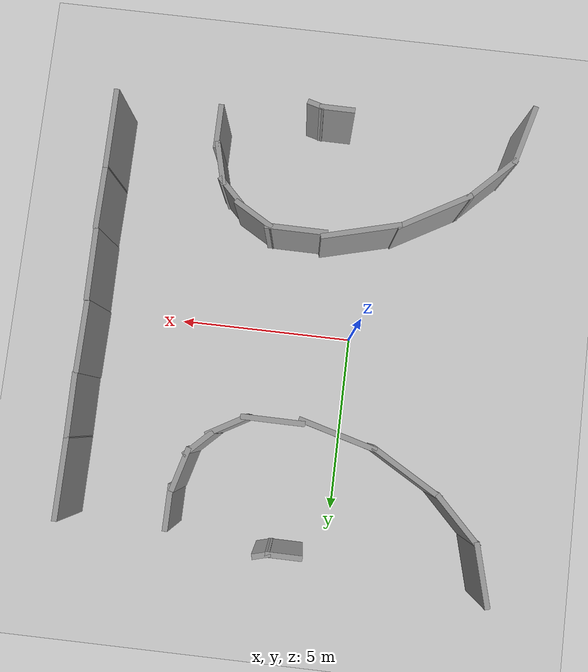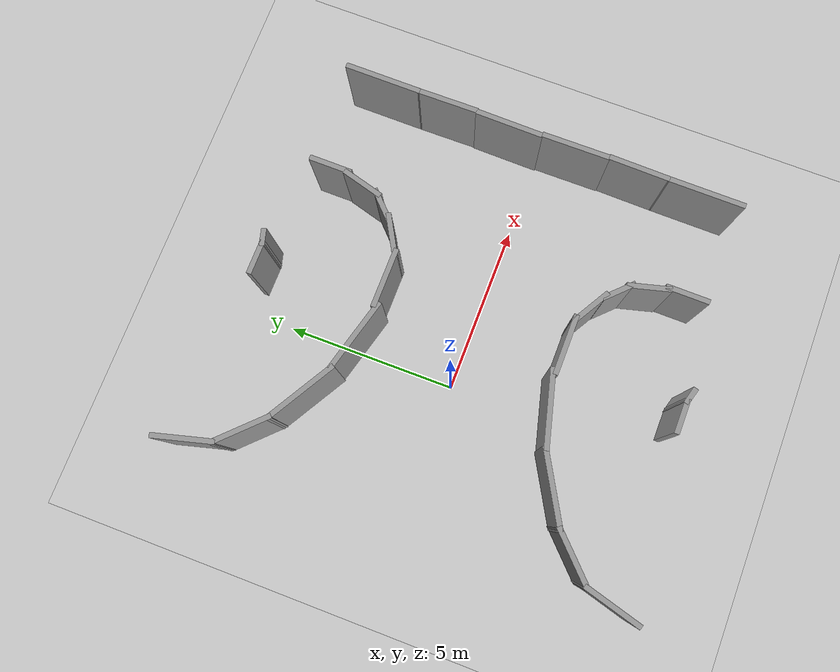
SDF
<sdf version="1.6">
 <world name="default">
  <model name="ground_plane">
   <static>1</static>
   <link name="link">
    <collision name="collision">
     <geometry><plane><normal>0 0 1</normal><size>100 100</size></plane></geometry>
     <surface><friction><ode><mu>100</mu><mu2>50</mu2></ode></friction></surface>
    </collision>
    <visual name="visual">
     <cast_shadows>0</cast_shadows>
     <geometry><plane><normal>0 0 1</normal><size>100 100</size></plane></geometry>
     <material>
      <script><uri>file://media/materials/scripts/gazebo.material</uri><name>Gazebo/Grey</name></script>
     </material>
    </visual>
   </link>
  </model>
  <model name="c-Snail_update">
   <link name="Wall_14">
    <pose>-5.26527 -5.8787 0 0 0 -0.010393</pose>
    <visual name="Wall_14_Visual">
     <pose>0 0 1.25 0 -0 0</pose>
     <geometry><box><size>2 0.15 2.5</size></box></geometry>
     <material>
      <script><uri>file://media/materials/scripts/gazebo.material</uri><name>Gazebo/Grey</name></script>
      <ambient>1 1 1 1</ambient>
     </material>
     <meta><layer>0</layer></meta>
    </visual>
    <collision name="Wall_14_Collision">
     <pose>0 0 1.25 0 -0 0</pose>
     <geometry><box><size>2 0.15 2.5</size></box></geometry>
     <surface>
      <friction>
       <ode><mu>1</mu><mu2>1</mu2><fdir1>0 0 0</fdir1><slip1>0</slip1><slip2>0</slip2></ode>
       <torsional>
        <coefficient>1</coefficient>
        <patch_radius>0</patch_radius>
        <surface_radius>0</surface_radius>
        <use_patch_radius>1</use_patch_radius>
        <ode><slip>0</slip></ode>
       </torsional>
      </friction>
      <bounce><restitution_coefficient>0</restitution_coefficient><threshold>1e+06</threshold></bounce>
      <contact>
       <collide_without_contact>0</collide_without_contact>
       <collide_without_contact_bitmask>1</collide_without_contact_bitmask>
       <collide_bitmask>1</collide_bitmask>
       <ode>
        <soft_cfm>0</soft_cfm>
        <soft_erp>0.2</soft_erp>
        <kp>1e+13</kp>
        <kd>1</kd>
        <max_vel>0.01</max_vel>
        <min_depth>0</min_depth>
       </ode>
       <bullet>
        <split_impulse>1</split_impulse>
        <split_impulse_penetration_threshold>-0.01</split_impulse_penetration_threshold>
        <soft_cfm>0</soft_cfm>
        <soft_erp>0.2</soft_erp>
        <kp>1e+13</kp>
        <kd>1</kd>
       </bullet>
      </contact>
     </surface>
    </collision>
   </link>
   <link name="Wall_15">
    <pose>-3.40013 -5.89719 0 0 -0 0.01305</pose>
    <visual name="Wall_15_Visual">
     <pose>0 0 1.25 0 -0 0</pose>
     <geometry><box><size>1.77919 0.15 2.5</size></box></geometry>
     <material>
      <script><uri>file://media/materials/scripts/gazebo.material</uri><name>Gazebo/Grey</name></script>
      <ambient>1 1 1 1</ambient>
     </material>
     <meta><layer>0</layer></meta>
    </visual>
    <collision name="Wall_15_Collision">
     <pose>0 0 1.25 0 -0 0</pose>
     <geometry><box><size>1.77919 0.15 2.5</size></box></geometry>
     <surface>
      <friction>
       <ode><mu>1</mu><mu2>1</mu2><fdir1>0 0 0</fdir1><slip1>0</slip1><slip2>0</slip2></ode>
       <torsional>
        <coefficient>1</coefficient>
        <patch_radius>0</patch_radius>
        <surface_radius>0</surface_radius>
        <use_patch_radius>1</use_patch_radius>
        <ode><slip>0</slip></ode>
       </torsional>
      </friction>
      <bounce><restitution_coefficient>0</restitution_coefficient><threshold>1e+06</threshold></bounce>
      <contact>
       <collide_without_contact>0</collide_without_contact>
       <collide_without_contact_bitmask>1</collide_without_contact_bitmask>
       <collide_bitmask>1</collide_bitmask>
       <ode>
        <soft_cfm>0</soft_cfm>
        <soft_erp>0.2</soft_erp>
        <kp>1e+13</kp>
        <kd>1</kd>
        <max_vel>0.01</max_vel>
        <min_depth>0</min_depth>
       </ode>
       <bullet>
        <split_impulse>1</split_impulse>
        <split_impulse_penetration_threshold>-0.01</split_impulse_penetration_threshold>
        <soft_cfm>0</soft_cfm>
        <soft_erp>0.2</soft_erp>
        <kp>1e+13</kp>
        <kd>1</kd>
       </bullet>
      </contact>
     </surface>
    </collision>
   </link>
   <link name="Wall_18">
    <pose>-1.42808 -5.88586 0 0 -0 0</pose>
    <visual name="Wall_18_Visual">
     <pose>0 0 1.25 0 -0 0</pose>
     <geometry><box><size>2.25 0.15 2.5</size></box></geometry>
     <material>
      <script><uri>file://media/materials/scripts/gazebo.material</uri><name>Gazebo/Grey</name></script>
      <ambient>1 1 1 1</ambient>
     </material>
     <meta><layer>0</layer></meta>
    </visual>
    <collision name="Wall_18_Collision">
     <pose>0 0 1.25 0 -0 0</pose>
     <geometry><box><size>2.25 0.15 2.5</size></box></geometry>
     <surface>
      <friction>
       <ode><mu>1</mu><mu2>1</mu2><fdir1>0 0 0</fdir1><slip1>0</slip1><slip2>0</slip2></ode>
       <torsional>
        <coefficient>1</coefficient>
        <patch_radius>0</patch_radius>
        <surface_radius>0</surface_radius>
        <use_patch_radius>1</use_patch_radius>
        <ode><slip>0</slip></ode>
       </torsional>
      </friction>
      <bounce><restitution_coefficient>0</restitution_coefficient><threshold>1e+06</threshold></bounce>
      <contact>
       <collide_without_contact>0</collide_without_contact>
       <collide_without_contact_bitmask>1</collide_without_contact_bitmask>
       <collide_bitmask>1</collide_bitmask>
       <ode>
        <soft_cfm>0</soft_cfm>
        <soft_erp>0.2</soft_erp>
        <kp>1e+13</kp>
        <kd>1</kd>
        <max_vel>0.01</max_vel>
        <min_depth>0</min_depth>
       </ode>
       <bullet>
        <split_impulse>1</split_impulse>
        <split_impulse_penetration_threshold>-0.01</split_impulse_penetration_threshold>
        <soft_cfm>0</soft_cfm>
        <soft_erp>0.2</soft_erp>
        <kp>1e+13</kp>
        <kd>1</kd>
       </bullet>
      </contact>
     </surface>
    </collision>
   </link>
   <link name="Wall_37">
    <pose>-0.255959 5.49815 0 0 0 -2.87979</pose>
    <visual name="Wall_37_Visual">
     <pose>0 0 1.25 0 -0 0</pose>
     <geometry><box><size>1.75 0.15 2.5</size></box></geometry>
     <material>
      <script><uri>file://media/materials/scripts/gazebo.material</uri><name>Gazebo/Grey</name></script>
      <ambient>1 1 1 1</ambient>
     </material>
     <meta><layer>0</layer></meta>
    </visual>
    <collision name="Wall_37_Collision">
     <pose>0 0 1.25 0 -0 0</pose>
     <geometry><box><size>1.75 0.15 2.5</size></box></geometry>
     <surface>
      <friction>
       <ode><mu>1</mu><mu2>1</mu2><fdir1>0 0 0</fdir1><slip1>0</slip1><slip2>0</slip2></ode>
       <torsional>
        <coefficient>1</coefficient>
        <patch_radius>0</patch_radius>
        <surface_radius>0</surface_radius>
        <use_patch_radius>1</use_patch_radius>
        <ode><slip>0</slip></ode>
       </torsional>
      </friction>
      <bounce><restitution_coefficient>0</restitution_coefficient><threshold>1e+06</threshold></bounce>
      <contact>
       <collide_without_contact>0</collide_without_contact>
       <collide_without_contact_bitmask>1</collide_without_contact_bitmask>
       <collide_bitmask>1</collide_bitmask>
       <ode>
        <soft_cfm>0</soft_cfm>
        <soft_erp>0.2</soft_erp>
        <kp>1e+13</kp>
        <kd>1</kd>
        <max_vel>0.01</max_vel>
        <min_depth>0</min_depth>
       </ode>
       <bullet>
        <split_impulse>1</split_impulse>
        <split_impulse_penetration_threshold>-0.01</split_impulse_penetration_threshold>
        <soft_cfm>0</soft_cfm>
        <soft_erp>0.2</soft_erp>
        <kp>1e+13</kp>
        <kd>1</kd>
       </bullet>
      </contact>
     </surface>
    </collision>
   </link>
   <link name="Wall_38">
    <pose>-1.59438 4.72541 0 0 0 -2.35619</pose>
    <visual name="Wall_38_Visual">
     <pose>0 0 1.25 0 -0 0</pose>
     <geometry><box><size>1.75 0.15 2.5</size></box></geometry>
     <material>
      <script><uri>file://media/materials/scripts/gazebo.material</uri><name>Gazebo/Grey</name></script>
      <ambient>1 1 1 1</ambient>
     </material>
     <meta><layer>0</layer></meta>
    </visual>
    <collision name="Wall_38_Collision">
     <pose>0 0 1.25 0 -0 0</pose>
     <geometry><box><size>1.75 0.15 2.5</size></box></geometry>
     <surface>
      <friction>
       <ode><mu>1</mu><mu2>1</mu2><fdir1>0 0 0</fdir1><slip1>0</slip1><slip2>0</slip2></ode>
       <torsional>
        <coefficient>1</coefficient>
        <patch_radius>0</patch_radius>
        <surface_radius>0</surface_radius>
        <use_patch_radius>1</use_patch_radius>
        <ode><slip>0</slip></ode>
       </torsional>
      </friction>
      <bounce><restitution_coefficient>0</restitution_coefficient><threshold>1e+06</threshold></bounce>
      <contact>
       <collide_without_contact>0</collide_without_contact>
       <collide_without_contact_bitmask>1</collide_without_contact_bitmask>
       <collide_bitmask>1</collide_bitmask>
       <ode>
        <soft_cfm>0</soft_cfm>
        <soft_erp>0.2</soft_erp>
        <kp>1e+13</kp>
        <kd>1</kd>
        <max_vel>0.01</max_vel>
        <min_depth>0</min_depth>
       </ode>
       <bullet>
        <split_impulse>1</split_impulse>
        <split_impulse_penetration_threshold>-0.01</split_impulse_penetration_threshold>
        <soft_cfm>0</soft_cfm>
        <soft_erp>0.2</soft_erp>
        <kp>1e+13</kp>
        <kd>1</kd>
       </bullet>
      </contact>
     </surface>
    </collision>
   </link>
   <link name="Wall_39">
    <pose>-2.68507 3.2504 0 0 0 -2.0944</pose>
    <visual name="Wall_39_Visual">
     <pose>0 0 1.25 0 -0 0</pose>
     <geometry><box><size>2.25 0.15 2.5</size></box></geometry>
     <material>
      <script><uri>file://media/materials/scripts/gazebo.material</uri><name>Gazebo/Grey</name></script>
      <ambient>1 1 1 1</ambient>
     </material>
     <meta><layer>0</layer></meta>
    </visual>
    <collision name="Wall_39_Collision">
     <pose>0 0 1.25 0 -0 0</pose>
     <geometry><box><size>2.25 0.15 2.5</size></box></geometry>
     <surface>
      <friction>
       <ode><mu>1</mu><mu2>1</mu2><fdir1>0 0 0</fdir1><slip1>0</slip1><slip2>0</slip2></ode>
       <torsional>
        <coefficient>1</coefficient>
        <patch_radius>0</patch_radius>
        <surface_radius>0</surface_radius>
        <use_patch_radius>1</use_patch_radius>
        <ode><slip>0</slip></ode>
       </torsional>
      </friction>
      <bounce><restitution_coefficient>0</restitution_coefficient><threshold>1e+06</threshold></bounce>
      <contact>
       <collide_without_contact>0</collide_without_contact>
       <collide_without_contact_bitmask>1</collide_without_contact_bitmask>
       <collide_bitmask>1</collide_bitmask>
       <ode>
        <soft_cfm>0</soft_cfm>
        <soft_erp>0.2</soft_erp>
        <kp>1e+13</kp>
        <kd>1</kd>
        <max_vel>0.01</max_vel>
        <min_depth>0</min_depth>
       </ode>
       <bullet>
        <split_impulse>1</split_impulse>
        <split_impulse_penetration_threshold>-0.01</split_impulse_penetration_threshold>
        <soft_cfm>0</soft_cfm>
        <soft_erp>0.2</soft_erp>
        <kp>1e+13</kp>
        <kd>1</kd>
       </bullet>
      </contact>
     </surface>
    </collision>
   </link>
   <link name="Wall_40">
    <pose>-3.4661 1.30505 0 0 0 -1.8326</pose>
    <visual name="Wall_40_Visual">
     <pose>0 0 1.25 0 -0 0</pose>
     <geometry><box><size>2.25 0.15 2.5</size></box></geometry>
     <material>
      <script><uri>file://media/materials/scripts/gazebo.material</uri><name>Gazebo/Grey</name></script>
      <ambient>1 1 1 1</ambient>
     </material>
     <meta><layer>0</layer></meta>
    </visual>
    <collision name="Wall_40_Collision">
     <pose>0 0 1.25 0 -0 0</pose>
     <geometry><box><size>2.25 0.15 2.5</size></box></geometry>
     <surface>
      <friction>
       <ode><mu>1</mu><mu2>1</mu2><fdir1>0 0 0</fdir1><slip1>0</slip1><slip2>0</slip2></ode>
       <torsional>
        <coefficient>1</coefficient>
        <patch_radius>0</patch_radius>
        <surface_radius>0</surface_radius>
        <use_patch_radius>1</use_patch_radius>
        <ode><slip>0</slip></ode>
       </torsional>
      </friction>
      <bounce><restitution_coefficient>0</restitution_coefficient><threshold>1e+06</threshold></bounce>
      <contact>
       <collide_without_contact>0</collide_without_contact>
       <collide_without_contact_bitmask>1</collide_without_contact_bitmask>
       <collide_bitmask>1</collide_bitmask>
       <ode>
        <soft_cfm>0</soft_cfm>
        <soft_erp>0.2</soft_erp>
        <kp>1e+13</kp>
        <kd>1</kd>
        <max_vel>0.01</max_vel>
        <min_depth>0</min_depth>
       </ode>
       <bullet>
        <split_impulse>1</split_impulse>
        <split_impulse_penetration_threshold>-0.01</split_impulse_penetration_threshold>
        <soft_cfm>0</soft_cfm>
        <soft_erp>0.2</soft_erp>
        <kp>1e+13</kp>
        <kd>1</kd>
       </bullet>
      </contact>
     </surface>
    </collision>
   </link>
   <link name="Wall_41">
    <pose>-3.63808 -0.467586 0 0 0 -1.5708</pose>
    <visual name="Wall_41_Visual">
     <pose>0 0 1.25 0 -0 0</pose>
     <geometry><box><size>1.75 0.15 2.5</size></box></geometry>
     <material>
      <script><uri>file://media/materials/scripts/gazebo.material</uri><name>Gazebo/Grey</name></script>
      <ambient>1 1 1 1</ambient>
     </material>
     <meta><layer>0</layer></meta>
    </visual>
    <collision name="Wall_41_Collision">
     <pose>0 0 1.25 0 -0 0</pose>
     <geometry><box><size>1.75 0.15 2.5</size></box></geometry>
     <surface>
      <friction>
       <ode><mu>1</mu><mu2>1</mu2><fdir1>0 0 0</fdir1><slip1>0</slip1><slip2>0</slip2></ode>
       <torsional>
        <coefficient>1</coefficient>
        <patch_radius>0</patch_radius>
        <surface_radius>0</surface_radius>
        <use_patch_radius>1</use_patch_radius>
        <ode><slip>0</slip></ode>
       </torsional>
      </friction>
      <bounce><restitution_coefficient>0</restitution_coefficient><threshold>1e+06</threshold></bounce>
      <contact>
       <collide_without_contact>0</collide_without_contact>
       <collide_without_contact_bitmask>1</collide_without_contact_bitmask>
       <collide_bitmask>1</collide_bitmask>
       <ode>
        <soft_cfm>0</soft_cfm>
        <soft_erp>0.2</soft_erp>
        <kp>1e+13</kp>
        <kd>1</kd>
        <max_vel>0.01</max_vel>
        <min_depth>0</min_depth>
       </ode>
       <bullet>
        <split_impulse>1</split_impulse>
        <split_impulse_penetration_threshold>-0.01</split_impulse_penetration_threshold>
        <soft_cfm>0</soft_cfm>
        <soft_erp>0.2</soft_erp>
        <kp>1e+13</kp>
        <kd>1</kd>
       </bullet>
      </contact>
     </surface>
    </collision>
   </link>
   <link name="Wall_42">
    <pose>-3.35514 -1.67487 0 0 0 -1.0472</pose>
    <visual name="Wall_42_Visual">
     <pose>0 0 1.25 0 -0 0</pose>
     <geometry><box><size>1.25 0.15 2.5</size></box></geometry>
     <material>
      <script><uri>file://media/materials/scripts/gazebo.material</uri><name>Gazebo/Grey</name></script>
      <ambient>1 1 1 1</ambient>
     </material>
     <meta><layer>0</layer></meta>
    </visual>
    <collision name="Wall_42_Collision">
     <pose>0 0 1.25 0 -0 0</pose>
     <geometry><box><size>1.25 0.15 2.5</size></box></geometry>
     <surface>
      <friction>
       <ode><mu>1</mu><mu2>1</mu2><fdir1>0 0 0</fdir1><slip1>0</slip1><slip2>0</slip2></ode>
       <torsional>
        <coefficient>1</coefficient>
        <patch_radius>0</patch_radius>
        <surface_radius>0</surface_radius>
        <use_patch_radius>1</use_patch_radius>
        <ode><slip>0</slip></ode>
       </torsional>
      </friction>
      <bounce><restitution_coefficient>0</restitution_coefficient><threshold>1e+06</threshold></bounce>
      <contact>
       <collide_without_contact>0</collide_without_contact>
       <collide_without_contact_bitmask>1</collide_without_contact_bitmask>
       <collide_bitmask>1</collide_bitmask>
       <ode>
        <soft_cfm>0</soft_cfm>
        <soft_erp>0.2</soft_erp>
        <kp>1e+13</kp>
        <kd>1</kd>
        <max_vel>0.01</max_vel>
        <min_depth>0</min_depth>
       </ode>
       <bullet>
        <split_impulse>1</split_impulse>
        <split_impulse_penetration_threshold>-0.01</split_impulse_penetration_threshold>
        <soft_cfm>0</soft_cfm>
        <soft_erp>0.2</soft_erp>
        <kp>1e+13</kp>
        <kd>1</kd>
       </bullet>
      </contact>
     </surface>
    </collision>
   </link>
   <link name="Wall_43">
    <pose>-2.78966 -2.37241 0 0 0 -0.785398</pose>
    <visual name="Wall_43_Visual">
     <pose>0 0 1.25 0 -0 0</pose>
     <geometry><box><size>1 0.15 2.5</size></box></geometry>
     <material>
      <script><uri>file://media/materials/scripts/gazebo.material</uri><name>Gazebo/Grey</name></script>
      <ambient>1 1 1 1</ambient>
     </material>
     <meta><layer>0</layer></meta>
    </visual>
    <collision name="Wall_43_Collision">
     <pose>0 0 1.25 0 -0 0</pose>
     <geometry><box><size>1 0.15 2.5</size></box></geometry>
     <surface>
      <friction>
       <ode><mu>1</mu><mu2>1</mu2><fdir1>0 0 0</fdir1><slip1>0</slip1><slip2>0</slip2></ode>
       <torsional>
        <coefficient>1</coefficient>
        <patch_radius>0</patch_radius>
        <surface_radius>0</surface_radius>
        <use_patch_radius>1</use_patch_radius>
        <ode><slip>0</slip></ode>
       </torsional>
      </friction>
      <bounce><restitution_coefficient>0</restitution_coefficient><threshold>1e+06</threshold></bounce>
      <contact>
       <collide_without_contact>0</collide_without_contact>
       <collide_without_contact_bitmask>1</collide_without_contact_bitmask>
       <collide_bitmask>1</collide_bitmask>
       <ode>
        <soft_cfm>0</soft_cfm>
        <soft_erp>0.2</soft_erp>
        <kp>1e+13</kp>
        <kd>1</kd>
        <max_vel>0.01</max_vel>
        <min_depth>0</min_depth>
       </ode>
       <bullet>
        <split_impulse>1</split_impulse>
        <split_impulse_penetration_threshold>-0.01</split_impulse_penetration_threshold>
        <soft_cfm>0</soft_cfm>
        <soft_erp>0.2</soft_erp>
        <kp>1e+13</kp>
        <kd>1</kd>
       </bullet>
      </contact>
     </surface>
    </collision>
   </link>
   <link name="Wall_44">
    <pose>-2.05063 -2.75971 0 0 0 -0.261799</pose>
    <visual name="Wall_44_Visual">
     <pose>0 0 1.25 0 -0 0</pose>
     <geometry><box><size>1.25 0.15 2.5</size></box></geometry>
     <material>
      <script><uri>file://media/materials/scripts/gazebo.material</uri><name>Gazebo/Grey</name></script>
      <ambient>1 1 1 1</ambient>
     </material>
     <meta><layer>0</layer></meta>
    </visual>
    <collision name="Wall_44_Collision">
     <pose>0 0 1.25 0 -0 0</pose>
     <geometry><box><size>1.25 0.15 2.5</size></box></geometry>
     <surface>
      <friction>
       <ode><mu>1</mu><mu2>1</mu2><fdir1>0 0 0</fdir1><slip1>0</slip1><slip2>0</slip2></ode>
       <torsional>
        <coefficient>1</coefficient>
        <patch_radius>0</patch_radius>
        <surface_radius>0</surface_radius>
        <use_patch_radius>1</use_patch_radius>
        <ode><slip>0</slip></ode>
       </torsional>
      </friction>
      <bounce><restitution_coefficient>0</restitution_coefficient><threshold>1e+06</threshold></bounce>
      <contact>
       <collide_without_contact>0</collide_without_contact>
       <collide_without_contact_bitmask>1</collide_without_contact_bitmask>
       <collide_bitmask>1</collide_bitmask>
       <ode>
        <soft_cfm>0</soft_cfm>
        <soft_erp>0.2</soft_erp>
        <kp>1e+13</kp>
        <kd>1</kd>
        <max_vel>0.01</max_vel>
        <min_depth>0</min_depth>
       </ode>
       <bullet>
        <split_impulse>1</split_impulse>
        <split_impulse_penetration_threshold>-0.01</split_impulse_penetration_threshold>
        <soft_cfm>0</soft_cfm>
        <soft_erp>0.2</soft_erp>
        <kp>1e+13</kp>
        <kd>1</kd>
       </bullet>
      </contact>
     </surface>
    </collision>
   </link>
   <link name="Wall_45">
    <pose>-1.01737 -2.94537 0 0 -0 0</pose>
    <visual name="Wall_45_Visual">
     <pose>0 0 1.25 0 -0 0</pose>
     <geometry><box><size>1.25 0.15 2.5</size></box></geometry>
     <material>
      <script><uri>file://media/materials/scripts/gazebo.material</uri><name>Gazebo/Grey</name></script>
      <ambient>1 1 1 1</ambient>
     </material>
     <meta><layer>0</layer></meta>
    </visual>
    <collision name="Wall_45_Collision">
     <pose>0 0 1.25 0 -0 0</pose>
     <geometry><box><size>1.25 0.15 2.5</size></box></geometry>
     <surface>
      <friction>
       <ode><mu>1</mu><mu2>1</mu2><fdir1>0 0 0</fdir1><slip1>0</slip1><slip2>0</slip2></ode>
       <torsional>
        <coefficient>1</coefficient>
        <patch_radius>0</patch_radius>
        <surface_radius>0</surface_radius>
        <use_patch_radius>1</use_patch_radius>
        <ode><slip>0</slip></ode>
       </torsional>
      </friction>
      <bounce><restitution_coefficient>0</restitution_coefficient><threshold>1e+06</threshold></bounce>
      <contact>
       <collide_without_contact>0</collide_without_contact>
       <collide_without_contact_bitmask>1</collide_without_contact_bitmask>
       <collide_bitmask>1</collide_bitmask>
       <ode>
        <soft_cfm>0</soft_cfm>
        <soft_erp>0.2</soft_erp>
        <kp>1e+13</kp>
        <kd>1</kd>
        <max_vel>0.01</max_vel>
        <min_depth>0</min_depth>
       </ode>
       <bullet>
        <split_impulse>1</split_impulse>
        <split_impulse_penetration_threshold>-0.01</split_impulse_penetration_threshold>
        <soft_cfm>0</soft_cfm>
        <soft_erp>0.2</soft_erp>
        <kp>1e+13</kp>
        <kd>1</kd>
       </bullet>
      </contact>
     </surface>
    </collision>
   </link>
   <link name="Wall_67">
    <pose>-0.123486 0.254263 0 0 0 -1.5708</pose>
    <visual name="Wall_67_Visual">
     <pose>0 0 1.25 0 -0 0</pose>
     <geometry><box><size>1 0.15 2.5</size></box></geometry>
     <material>
      <script><uri>file://media/materials/scripts/gazebo.material</uri><name>Gazebo/Grey</name></script>
      <ambient>1 1 1 1</ambient>
     </material>
     <meta><layer>0</layer></meta>
    </visual>
    <collision name="Wall_67_Collision">
     <pose>0 0 1.25 0 -0 0</pose>
     <geometry><box><size>1 0.15 2.5</size></box></geometry>
     <surface>
      <friction>
       <ode><mu>1</mu><mu2>1</mu2><fdir1>0 0 0</fdir1><slip1>0</slip1><slip2>0</slip2></ode>
       <torsional>
        <coefficient>1</coefficient>
        <patch_radius>0</patch_radius>
        <surface_radius>0</surface_radius>
        <use_patch_radius>1</use_patch_radius>
        <ode><slip>0</slip></ode>
       </torsional>
      </friction>
      <bounce><restitution_coefficient>0</restitution_coefficient><threshold>1e+06</threshold></bounce>
      <contact>
       <collide_without_contact>0</collide_without_contact>
       <collide_without_contact_bitmask>1</collide_without_contact_bitmask>
       <collide_bitmask>1</collide_bitmask>
       <ode>
        <soft_cfm>0</soft_cfm>
        <soft_erp>0.2</soft_erp>
        <kp>1e+13</kp>
        <kd>1</kd>
        <max_vel>0.01</max_vel>
        <min_depth>0</min_depth>
       </ode>
       <bullet>
        <split_impulse>1</split_impulse>
        <split_impulse_penetration_threshold>-0.01</split_impulse_penetration_threshold>
        <soft_cfm>0</soft_cfm>
        <soft_erp>0.2</soft_erp>
        <kp>1e+13</kp>
        <kd>1</kd>
       </bullet>
      </contact>
     </surface>
    </collision>
   </link>
   <link name="Wall_68">
    <pose>-0.078192 -0.339774 0 0 0 -1.309</pose>
    <visual name="Wall_68_Visual">
     <pose>0 0 1.25 0 -0 0</pose>
     <geometry><box><size>0.5 0.15 2.5</size></box></geometry>
     <material>
      <script><uri>file://media/materials/scripts/gazebo.material</uri><name>Gazebo/Grey</name></script>
      <ambient>1 1 1 1</ambient>
     </material>
     <meta><layer>0</layer></meta>
    </visual>
    <collision name="Wall_68_Collision">
     <pose>0 0 1.25 0 -0 0</pose>
     <geometry><box><size>0.5 0.15 2.5</size></box></geometry>
     <surface>
      <friction>
       <ode><mu>1</mu><mu2>1</mu2><fdir1>0 0 0</fdir1><slip1>0</slip1><slip2>0</slip2></ode>
       <torsional>
        <coefficient>1</coefficient>
        <patch_radius>0</patch_radius>
        <surface_radius>0</surface_radius>
        <use_patch_radius>1</use_patch_radius>
        <ode><slip>0</slip></ode>
       </torsional>
      </friction>
      <bounce><restitution_coefficient>0</restitution_coefficient><threshold>1e+06</threshold></bounce>
      <contact>
       <collide_without_contact>0</collide_without_contact>
       <collide_without_contact_bitmask>1</collide_without_contact_bitmask>
       <collide_bitmask>1</collide_bitmask>
       <ode>
        <soft_cfm>0</soft_cfm>
        <soft_erp>0.2</soft_erp>
        <kp>1e+13</kp>
        <kd>1</kd>
        <max_vel>0.01</max_vel>
        <min_depth>0</min_depth>
       </ode>
       <bullet>
        <split_impulse>1</split_impulse>
        <split_impulse_penetration_threshold>-0.01</split_impulse_penetration_threshold>
        <soft_cfm>0</soft_cfm>
        <soft_erp>0.2</soft_erp>
        <kp>1e+13</kp>
        <kd>1</kd>
       </bullet>
      </contact>
     </surface>
    </collision>
   </link>
   <static>1</static>
   <pose>1.45325 6.27525 0 0 -0 1.56548</pose>
  </model>
  <model name="c-Snail_update_clone">
   <link name="Wall_14">
    <pose>-5.26527 -5.8787 0 0 0 -0.010393</pose>
    <visual name="Wall_14_Visual">
     <pose>0 0 1.25 0 -0 0</pose>
     <geometry><box><size>2 0.15 2.5</size></box></geometry>
     <material>
      <script><uri>file://media/materials/scripts/gazebo.material</uri><name>Gazebo/Grey</name></script>
      <ambient>1 1 1 1</ambient>
     </material>
     <meta><layer>0</layer></meta>
    </visual>
    <collision name="Wall_14_Collision">
     <pose>0 0 1.25 0 -0 0</pose>
     <geometry><box><size>2 0.15 2.5</size></box></geometry>
     <surface>
      <friction>
       <ode><mu>1</mu><mu2>1</mu2><fdir1>0 0 0</fdir1><slip1>0</slip1><slip2>0</slip2></ode>
       <torsional>
        <coefficient>1</coefficient>
        <patch_radius>0</patch_radius>
        <surface_radius>0</surface_radius>
        <use_patch_radius>1</use_patch_radius>
        <ode><slip>0</slip></ode>
       </torsional>
      </friction>
      <bounce><restitution_coefficient>0</restitution_coefficient><threshold>1e+06</threshold></bounce>
      <contact>
       <collide_without_contact>0</collide_without_contact>
       <collide_without_contact_bitmask>1</collide_without_contact_bitmask>
       <collide_bitmask>1</collide_bitmask>
       <ode>
        <soft_cfm>0</soft_cfm>
        <soft_erp>0.2</soft_erp>
        <kp>1e+13</kp>
        <kd>1</kd>
        <max_vel>0.01</max_vel>
        <min_depth>0</min_depth>
       </ode>
       <bullet>
        <split_impulse>1</split_impulse>
        <split_impulse_penetration_threshold>-0.01</split_impulse_penetration_threshold>
        <soft_cfm>0</soft_cfm>
        <soft_erp>0.2</soft_erp>
        <kp>1e+13</kp>
        <kd>1</kd>
       </bullet>
      </contact>
     </surface>
    </collision>
   </link>
   <link name="Wall_15">
    <pose>-3.40013 -5.89719 0 0 -0 0.01305</pose>
    <visual name="Wall_15_Visual">
     <pose>0 0 1.25 0 -0 0</pose>
     <geometry><box><size>1.77919 0.15 2.5</size></box></geometry>
     <material>
      <script><uri>file://media/materials/scripts/gazebo.material</uri><name>Gazebo/Grey</name></script>
      <ambient>1 1 1 1</ambient>
     </material>
     <meta><layer>0</layer></meta>
    </visual>
    <collision name="Wall_15_Collision">
     <pose>0 0 1.25 0 -0 0</pose>
     <geometry><box><size>1.77919 0.15 2.5</size></box></geometry>
     <surface>
      <friction>
       <ode><mu>1</mu><mu2>1</mu2><fdir1>0 0 0</fdir1><slip1>0</slip1><slip2>0</slip2></ode>
       <torsional>
        <coefficient>1</coefficient>
        <patch_radius>0</patch_radius>
        <surface_radius>0</surface_radius>
        <use_patch_radius>1</use_patch_radius>
        <ode><slip>0</slip></ode>
       </torsional>
      </friction>
      <bounce><restitution_coefficient>0</restitution_coefficient><threshold>1e+06</threshold></bounce>
      <contact>
       <collide_without_contact>0</collide_without_contact>
       <collide_without_contact_bitmask>1</collide_without_contact_bitmask>
       <collide_bitmask>1</collide_bitmask>
       <ode>
        <soft_cfm>0</soft_cfm>
        <soft_erp>0.2</soft_erp>
        <kp>1e+13</kp>
        <kd>1</kd>
        <max_vel>0.01</max_vel>
        <min_depth>0</min_depth>
       </ode>
       <bullet>
        <split_impulse>1</split_impulse>
        <split_impulse_penetration_threshold>-0.01</split_impulse_penetration_threshold>
        <soft_cfm>0</soft_cfm>
        <soft_erp>0.2</soft_erp>
        <kp>1e+13</kp>
        <kd>1</kd>
       </bullet>
      </contact>
     </surface>
    </collision>
   </link>
   <link name="Wall_18">
    <pose>-1.42808 -5.88586 0 0 -0 0</pose>
    <visual name="Wall_18_Visual">
     <pose>0 0 1.25 0 -0 0</pose>
     <geometry><box><size>2.25 0.15 2.5</size></box></geometry>
     <material>
      <script><uri>file://media/materials/scripts/gazebo.material</uri><name>Gazebo/Grey</name></script>
      <ambient>1 1 1 1</ambient>
     </material>
     <meta><layer>0</layer></meta>
    </visual>
    <collision name="Wall_18_Collision">
     <pose>0 0 1.25 0 -0 0</pose>
     <geometry><box><size>2.25 0.15 2.5</size></box></geometry>
     <surface>
      <friction>
       <ode><mu>1</mu><mu2>1</mu2><fdir1>0 0 0</fdir1><slip1>0</slip1><slip2>0</slip2></ode>
       <torsional>
        <coefficient>1</coefficient>
        <patch_radius>0</patch_radius>
        <surface_radius>0</surface_radius>
        <use_patch_radius>1</use_patch_radius>
        <ode><slip>0</slip></ode>
       </torsional>
      </friction>
      <bounce><restitution_coefficient>0</restitution_coefficient><threshold>1e+06</threshold></bounce>
      <contact>
       <collide_without_contact>0</collide_without_contact>
       <collide_without_contact_bitmask>1</collide_without_contact_bitmask>
       <collide_bitmask>1</collide_bitmask>
       <ode>
        <soft_cfm>0</soft_cfm>
        <soft_erp>0.2</soft_erp>
        <kp>1e+13</kp>
        <kd>1</kd>
        <max_vel>0.01</max_vel>
        <min_depth>0</min_depth>
       </ode>
       <bullet>
        <split_impulse>1</split_impulse>
        <split_impulse_penetration_threshold>-0.01</split_impulse_penetration_threshold>
        <soft_cfm>0</soft_cfm>
        <soft_erp>0.2</soft_erp>
        <kp>1e+13</kp>
        <kd>1</kd>
       </bullet>
      </contact>
     </surface>
    </collision>
   </link>
   <link name="Wall_37">
    <pose>-0.255959 5.49815 0 0 0 -2.87979</pose>
    <visual name="Wall_37_Visual">
     <pose>0 0 1.25 0 -0 0</pose>
     <geometry><box><size>1.75 0.15 2.5</size></box></geometry>
     <material>
      <script><uri>file://media/materials/scripts/gazebo.material</uri><name>Gazebo/Grey</name></script>
      <ambient>1 1 1 1</ambient>
     </material>
     <meta><layer>0</layer></meta>
    </visual>
    <collision name="Wall_37_Collision">
     <pose>0 0 1.25 0 -0 0</pose>
     <geometry><box><size>1.75 0.15 2.5</size></box></geometry>
     <surface>
      <friction>
       <ode><mu>1</mu><mu2>1</mu2><fdir1>0 0 0</fdir1><slip1>0</slip1><slip2>0</slip2></ode>
       <torsional>
        <coefficient>1</coefficient>
        <patch_radius>0</patch_radius>
        <surface_radius>0</surface_radius>
        <use_patch_radius>1</use_patch_radius>
        <ode><slip>0</slip></ode>
       </torsional>
      </friction>
      <bounce><restitution_coefficient>0</restitution_coefficient><threshold>1e+06</threshold></bounce>
      <contact>
       <collide_without_contact>0</collide_without_contact>
       <collide_without_contact_bitmask>1</collide_without_contact_bitmask>
       <collide_bitmask>1</collide_bitmask>
       <ode>
        <soft_cfm>0</soft_cfm>
        <soft_erp>0.2</soft_erp>
        <kp>1e+13</kp>
        <kd>1</kd>
        <max_vel>0.01</max_vel>
        <min_depth>0</min_depth>
       </ode>
       <bullet>
        <split_impulse>1</split_impulse>
        <split_impulse_penetration_threshold>-0.01</split_impulse_penetration_threshold>
        <soft_cfm>0</soft_cfm>
        <soft_erp>0.2</soft_erp>
        <kp>1e+13</kp>
        <kd>1</kd>
       </bullet>
      </contact>
     </surface>
    </collision>
   </link>
   <link name="Wall_38">
    <pose>-1.59438 4.72541 0 0 0 -2.35619</pose>
    <visual name="Wall_38_Visual">
     <pose>0 0 1.25 0 -0 0</pose>
     <geometry><box><size>1.75 0.15 2.5</size></box></geometry>
     <material>
      <script><uri>file://media/materials/scripts/gazebo.material</uri><name>Gazebo/Grey</name></script>
      <ambient>1 1 1 1</ambient>
     </material>
     <meta><layer>0</layer></meta>
    </visual>
    <collision name="Wall_38_Collision">
     <pose>0 0 1.25 0 -0 0</pose>
     <geometry><box><size>1.75 0.15 2.5</size></box></geometry>
     <surface>
      <friction>
       <ode><mu>1</mu><mu2>1</mu2><fdir1>0 0 0</fdir1><slip1>0</slip1><slip2>0</slip2></ode>
       <torsional>
        <coefficient>1</coefficient>
        <patch_radius>0</patch_radius>
        <surface_radius>0</surface_radius>
        <use_patch_radius>1</use_patch_radius>
        <ode><slip>0</slip></ode>
       </torsional>
      </friction>
      <bounce><restitution_coefficient>0</restitution_coefficient><threshold>1e+06</threshold></bounce>
      <contact>
       <collide_without_contact>0</collide_without_contact>
       <collide_without_contact_bitmask>1</collide_without_contact_bitmask>
       <collide_bitmask>1</collide_bitmask>
       <ode>
        <soft_cfm>0</soft_cfm>
        <soft_erp>0.2</soft_erp>
        <kp>1e+13</kp>
        <kd>1</kd>
        <max_vel>0.01</max_vel>
        <min_depth>0</min_depth>
       </ode>
       <bullet>
        <split_impulse>1</split_impulse>
        <split_impulse_penetration_threshold>-0.01</split_impulse_penetration_threshold>
        <soft_cfm>0</soft_cfm>
        <soft_erp>0.2</soft_erp>
        <kp>1e+13</kp>
        <kd>1</kd>
       </bullet>
      </contact>
     </surface>
    </collision>
   </link>
   <link name="Wall_39">
    <pose>-2.68507 3.2504 0 0 0 -2.0944</pose>
    <visual name="Wall_39_Visual">
     <pose>0 0 1.25 0 -0 0</pose>
     <geometry><box><size>2.25 0.15 2.5</size></box></geometry>
     <material>
      <script><uri>file://media/materials/scripts/gazebo.material</uri><name>Gazebo/Grey</name></script>
      <ambient>1 1 1 1</ambient>
     </material>
     <meta><layer>0</layer></meta>
    </visual>
    <collision name="Wall_39_Collision">
     <pose>0 0 1.25 0 -0 0</pose>
     <geometry><box><size>2.25 0.15 2.5</size></box></geometry>
     <surface>
      <friction>
       <ode><mu>1</mu><mu2>1</mu2><fdir1>0 0 0</fdir1><slip1>0</slip1><slip2>0</slip2></ode>
       <torsional>
        <coefficient>1</coefficient>
        <patch_radius>0</patch_radius>
        <surface_radius>0</surface_radius>
        <use_patch_radius>1</use_patch_radius>
        <ode><slip>0</slip></ode>
       </torsional>
      </friction>
      <bounce><restitution_coefficient>0</restitution_coefficient><threshold>1e+06</threshold></bounce>
      <contact>
       <collide_without_contact>0</collide_without_contact>
       <collide_without_contact_bitmask>1</collide_without_contact_bitmask>
       <collide_bitmask>1</collide_bitmask>
       <ode>
        <soft_cfm>0</soft_cfm>
        <soft_erp>0.2</soft_erp>
        <kp>1e+13</kp>
        <kd>1</kd>
        <max_vel>0.01</max_vel>
        <min_depth>0</min_depth>
       </ode>
       <bullet>
        <split_impulse>1</split_impulse>
        <split_impulse_penetration_threshold>-0.01</split_impulse_penetration_threshold>
        <soft_cfm>0</soft_cfm>
        <soft_erp>0.2</soft_erp>
        <kp>1e+13</kp>
        <kd>1</kd>
       </bullet>
      </contact>
     </surface>
    </collision>
   </link>
   <link name="Wall_40">
    <pose>-3.4661 1.30505 0 0 0 -1.8326</pose>
    <visual name="Wall_40_Visual">
     <pose>0 0 1.25 0 -0 0</pose>
     <geometry><box><size>2.25 0.15 2.5</size></box></geometry>
     <material>
      <script><uri>file://media/materials/scripts/gazebo.material</uri><name>Gazebo/Grey</name></script>
      <ambient>1 1 1 1</ambient>
     </material>
     <meta><layer>0</layer></meta>
    </visual>
    <collision name="Wall_40_Collision">
     <pose>0 0 1.25 0 -0 0</pose>
     <geometry><box><size>2.25 0.15 2.5</size></box></geometry>
     <surface>
      <friction>
       <ode><mu>1</mu><mu2>1</mu2><fdir1>0 0 0</fdir1><slip1>0</slip1><slip2>0</slip2></ode>
       <torsional>
        <coefficient>1</coefficient>
        <patch_radius>0</patch_radius>
        <surface_radius>0</surface_radius>
        <use_patch_radius>1</use_patch_radius>
        <ode><slip>0</slip></ode>
       </torsional>
      </friction>
      <bounce><restitution_coefficient>0</restitution_coefficient><threshold>1e+06</threshold></bounce>
      <contact>
       <collide_without_contact>0</collide_without_contact>
       <collide_without_contact_bitmask>1</collide_without_contact_bitmask>
       <collide_bitmask>1</collide_bitmask>
       <ode>
        <soft_cfm>0</soft_cfm>
        <soft_erp>0.2</soft_erp>
        <kp>1e+13</kp>
        <kd>1</kd>
        <max_vel>0.01</max_vel>
        <min_depth>0</min_depth>
       </ode>
       <bullet>
        <split_impulse>1</split_impulse>
        <split_impulse_penetration_threshold>-0.01</split_impulse_penetration_threshold>
        <soft_cfm>0</soft_cfm>
        <soft_erp>0.2</soft_erp>
        <kp>1e+13</kp>
        <kd>1</kd>
       </bullet>
      </contact>
     </surface>
    </collision>
   </link>
   <link name="Wall_41">
    <pose>-3.63808 -0.467586 0 0 0 -1.5708</pose>
    <visual name="Wall_41_Visual">
     <pose>0 0 1.25 0 -0 0</pose>
     <geometry><box><size>1.75 0.15 2.5</size></box></geometry>
     <material>
      <script><uri>file://media/materials/scripts/gazebo.material</uri><name>Gazebo/Grey</name></script>
      <ambient>1 1 1 1</ambient>
     </material>
     <meta><layer>0</layer></meta>
    </visual>
    <collision name="Wall_41_Collision">
     <pose>0 0 1.25 0 -0 0</pose>
     <geometry><box><size>1.75 0.15 2.5</size></box></geometry>
     <surface>
      <friction>
       <ode><mu>1</mu><mu2>1</mu2><fdir1>0 0 0</fdir1><slip1>0</slip1><slip2>0</slip2></ode>
       <torsional>
        <coefficient>1</coefficient>
        <patch_radius>0</patch_radius>
        <surface_radius>0</surface_radius>
        <use_patch_radius>1</use_patch_radius>
        <ode><slip>0</slip></ode>
       </torsional>
      </friction>
      <bounce><restitution_coefficient>0</restitution_coefficient><threshold>1e+06</threshold></bounce>
      <contact>
       <collide_without_contact>0</collide_without_contact>
       <collide_without_contact_bitmask>1</collide_without_contact_bitmask>
       <collide_bitmask>1</collide_bitmask>
       <ode>
        <soft_cfm>0</soft_cfm>
        <soft_erp>0.2</soft_erp>
        <kp>1e+13</kp>
        <kd>1</kd>
        <max_vel>0.01</max_vel>
        <min_depth>0</min_depth>
       </ode>
       <bullet>
        <split_impulse>1</split_impulse>
        <split_impulse_penetration_threshold>-0.01</split_impulse_penetration_threshold>
        <soft_cfm>0</soft_cfm>
        <soft_erp>0.2</soft_erp>
        <kp>1e+13</kp>
        <kd>1</kd>
       </bullet>
      </contact>
     </surface>
    </collision>
   </link>
   <link name="Wall_42">
    <pose>-3.35514 -1.67487 0 0 0 -1.0472</pose>
    <visual name="Wall_42_Visual">
     <pose>0 0 1.25 0 -0 0</pose>
     <geometry><box><size>1.25 0.15 2.5</size></box></geometry>
     <material>
      <script><uri>file://media/materials/scripts/gazebo.material</uri><name>Gazebo/Grey</name></script>
      <ambient>1 1 1 1</ambient>
     </material>
     <meta><layer>0</layer></meta>
    </visual>
    <collision name="Wall_42_Collision">
     <pose>0 0 1.25 0 -0 0</pose>
     <geometry><box><size>1.25 0.15 2.5</size></box></geometry>
     <surface>
      <friction>
       <ode><mu>1</mu><mu2>1</mu2><fdir1>0 0 0</fdir1><slip1>0</slip1><slip2>0</slip2></ode>
       <torsional>
        <coefficient>1</coefficient>
        <patch_radius>0</patch_radius>
        <surface_radius>0</surface_radius>
        <use_patch_radius>1</use_patch_radius>
        <ode><slip>0</slip></ode>
       </torsional>
      </friction>
      <bounce><restitution_coefficient>0</restitution_coefficient><threshold>1e+06</threshold></bounce>
      <contact>
       <collide_without_contact>0</collide_without_contact>
       <collide_without_contact_bitmask>1</collide_without_contact_bitmask>
       <collide_bitmask>1</collide_bitmask>
       <ode>
        <soft_cfm>0</soft_cfm>
        <soft_erp>0.2</soft_erp>
        <kp>1e+13</kp>
        <kd>1</kd>
        <max_vel>0.01</max_vel>
        <min_depth>0</min_depth>
       </ode>
       <bullet>
        <split_impulse>1</split_impulse>
        <split_impulse_penetration_threshold>-0.01</split_impulse_penetration_threshold>
        <soft_cfm>0</soft_cfm>
        <soft_erp>0.2</soft_erp>
        <kp>1e+13</kp>
        <kd>1</kd>
       </bullet>
      </contact>
     </surface>
    </collision>
   </link>
   <link name="Wall_43">
    <pose>-2.78966 -2.37241 0 0 0 -0.785398</pose>
    <visual name="Wall_43_Visual">
     <pose>0 0 1.25 0 -0 0</pose>
     <geometry><box><size>1 0.15 2.5</size></box></geometry>
     <material>
      <script><uri>file://media/materials/scripts/gazebo.material</uri><name>Gazebo/Grey</name></script>
      <ambient>1 1 1 1</ambient>
     </material>
     <meta><layer>0</layer></meta>
    </visual>
    <collision name="Wall_43_Collision">
     <pose>0 0 1.25 0 -0 0</pose>
     <geometry><box><size>1 0.15 2.5</size></box></geometry>
     <surface>
      <friction>
       <ode><mu>1</mu><mu2>1</mu2><fdir1>0 0 0</fdir1><slip1>0</slip1><slip2>0</slip2></ode>
       <torsional>
        <coefficient>1</coefficient>
        <patch_radius>0</patch_radius>
        <surface_radius>0</surface_radius>
        <use_patch_radius>1</use_patch_radius>
        <ode><slip>0</slip></ode>
       </torsional>
      </friction>
      <bounce><restitution_coefficient>0</restitution_coefficient><threshold>1e+06</threshold></bounce>
      <contact>
       <collide_without_contact>0</collide_without_contact>
       <collide_without_contact_bitmask>1</collide_without_contact_bitmask>
       <collide_bitmask>1</collide_bitmask>
       <ode>
        <soft_cfm>0</soft_cfm>
        <soft_erp>0.2</soft_erp>
        <kp>1e+13</kp>
        <kd>1</kd>
        <max_vel>0.01</max_vel>
        <min_depth>0</min_depth>
       </ode>
       <bullet>
        <split_impulse>1</split_impulse>
        <split_impulse_penetration_threshold>-0.01</split_impulse_penetration_threshold>
        <soft_cfm>0</soft_cfm>
        <soft_erp>0.2</soft_erp>
        <kp>1e+13</kp>
        <kd>1</kd>
       </bullet>
      </contact>
     </surface>
    </collision>
   </link>
   <link name="Wall_44">
    <pose>-2.05063 -2.75971 0 0 0 -0.261799</pose>
    <visual name="Wall_44_Visual">
     <pose>0 0 1.25 0 -0 0</pose>
     <geometry><box><size>1.25 0.15 2.5</size></box></geometry>
     <material>
      <script><uri>file://media/materials/scripts/gazebo.material</uri><name>Gazebo/Grey</name></script>
      <ambient>1 1 1 1</ambient>
     </material>
     <meta><layer>0</layer></meta>
    </visual>
    <collision name="Wall_44_Collision">
     <pose>0 0 1.25 0 -0 0</pose>
     <geometry><box><size>1.25 0.15 2.5</size></box></geometry>
     <surface>
      <friction>
       <ode><mu>1</mu><mu2>1</mu2><fdir1>0 0 0</fdir1><slip1>0</slip1><slip2>0</slip2></ode>
       <torsional>
        <coefficient>1</coefficient>
        <patch_radius>0</patch_radius>
        <surface_radius>0</surface_radius>
        <use_patch_radius>1</use_patch_radius>
        <ode><slip>0</slip></ode>
       </torsional>
      </friction>
      <bounce><restitution_coefficient>0</restitution_coefficient><threshold>1e+06</threshold></bounce>
      <contact>
       <collide_without_contact>0</collide_without_contact>
       <collide_without_contact_bitmask>1</collide_without_contact_bitmask>
       <collide_bitmask>1</collide_bitmask>
       <ode>
        <soft_cfm>0</soft_cfm>
        <soft_erp>0.2</soft_erp>
        <kp>1e+13</kp>
        <kd>1</kd>
        <max_vel>0.01</max_vel>
        <min_depth>0</min_depth>
       </ode>
       <bullet>
        <split_impulse>1</split_impulse>
        <split_impulse_penetration_threshold>-0.01</split_impulse_penetration_threshold>
        <soft_cfm>0</soft_cfm>
        <soft_erp>0.2</soft_erp>
        <kp>1e+13</kp>
        <kd>1</kd>
       </bullet>
      </contact>
     </surface>
    </collision>
   </link>
   <link name="Wall_45">
    <pose>-1.01737 -2.94537 0 0 -0 0</pose>
    <visual name="Wall_45_Visual">
     <pose>0 0 1.25 0 -0 0</pose>
     <geometry><box><size>1.25 0.15 2.5</size></box></geometry>
     <material>
      <script><uri>file://media/materials/scripts/gazebo.material</uri><name>Gazebo/Grey</name></script>
      <ambient>1 1 1 1</ambient>
     </material>
     <meta><layer>0</layer></meta>
    </visual>
    <collision name="Wall_45_Collision">
     <pose>0 0 1.25 0 -0 0</pose>
     <geometry><box><size>1.25 0.15 2.5</size></box></geometry>
     <surface>
      <friction>
       <ode><mu>1</mu><mu2>1</mu2><fdir1>0 0 0</fdir1><slip1>0</slip1><slip2>0</slip2></ode>
       <torsional>
        <coefficient>1</coefficient>
        <patch_radius>0</patch_radius>
        <surface_radius>0</surface_radius>
        <use_patch_radius>1</use_patch_radius>
        <ode><slip>0</slip></ode>
       </torsional>
      </friction>
      <bounce><restitution_coefficient>0</restitution_coefficient><threshold>1e+06</threshold></bounce>
      <contact>
       <collide_without_contact>0</collide_without_contact>
       <collide_without_contact_bitmask>1</collide_without_contact_bitmask>
       <collide_bitmask>1</collide_bitmask>
       <ode>
        <soft_cfm>0</soft_cfm>
        <soft_erp>0.2</soft_erp>
        <kp>1e+13</kp>
        <kd>1</kd>
        <max_vel>0.01</max_vel>
        <min_depth>0</min_depth>
       </ode>
       <bullet>
        <split_impulse>1</split_impulse>
        <split_impulse_penetration_threshold>-0.01</split_impulse_penetration_threshold>
        <soft_cfm>0</soft_cfm>
        <soft_erp>0.2</soft_erp>
        <kp>1e+13</kp>
        <kd>1</kd>
       </bullet>
      </contact>
     </surface>
    </collision>
   </link>
   <link name="Wall_67">
    <pose>-0.123486 0.254263 0 0 0 -1.5708</pose>
    <visual name="Wall_67_Visual">
     <pose>0 0 1.25 0 -0 0</pose>
     <geometry><box><size>1 0.15 2.5</size></box></geometry>
     <material>
      <script><uri>file://media/materials/scripts/gazebo.material</uri><name>Gazebo/Grey</name></script>
      <ambient>1 1 1 1</ambient>
     </material>
     <meta><layer>0</layer></meta>
    </visual>
    <collision name="Wall_67_Collision">
     <pose>0 0 1.25 0 -0 0</pose>
     <geometry><box><size>1 0.15 2.5</size></box></geometry>
     <surface>
      <friction>
       <ode><mu>1</mu><mu2>1</mu2><fdir1>0 0 0</fdir1><slip1>0</slip1><slip2>0</slip2></ode>
       <torsional>
        <coefficient>1</coefficient>
        <patch_radius>0</patch_radius>
        <surface_radius>0</surface_radius>
        <use_patch_radius>1</use_patch_radius>
        <ode><slip>0</slip></ode>
       </torsional>
      </friction>
      <bounce><restitution_coefficient>0</restitution_coefficient><threshold>1e+06</threshold></bounce>
      <contact>
       <collide_without_contact>0</collide_without_contact>
       <collide_without_contact_bitmask>1</collide_without_contact_bitmask>
       <collide_bitmask>1</collide_bitmask>
       <ode>
        <soft_cfm>0</soft_cfm>
        <soft_erp>0.2</soft_erp>
        <kp>1e+13</kp>
        <kd>1</kd>
        <max_vel>0.01</max_vel>
        <min_depth>0</min_depth>
       </ode>
       <bullet>
        <split_impulse>1</split_impulse>
        <split_impulse_penetration_threshold>-0.01</split_impulse_penetration_threshold>
        <soft_cfm>0</soft_cfm>
        <soft_erp>0.2</soft_erp>
        <kp>1e+13</kp>
        <kd>1</kd>
       </bullet>
      </contact>
     </surface>
    </collision>
   </link>
   <link name="Wall_68">
    <pose>-0.078192 -0.339774 0 0 0 -1.309</pose>
    <visual name="Wall_68_Visual">
     <pose>0 0 1.25 0 -0 0</pose>
     <geometry><box><size>0.5 0.15 2.5</size></box></geometry>
     <material>
      <script><uri>file://media/materials/scripts/gazebo.material</uri><name>Gazebo/Grey</name></script>
      <ambient>1 1 1 1</ambient>
     </material>
     <meta><layer>0</layer></meta>
    </visual>
    <collision name="Wall_68_Collision">
     <pose>0 0 1.25 0 -0 0</pose>
     <geometry><box><size>0.5 0.15 2.5</size></box></geometry>
     <surface>
      <friction>
       <ode><mu>1</mu><mu2>1</mu2><fdir1>0 0 0</fdir1><slip1>0</slip1><slip2>0</slip2></ode>
       <torsional>
        <coefficient>1</coefficient>
        <patch_radius>0</patch_radius>
        <surface_radius>0</surface_radius>
        <use_patch_radius>1</use_patch_radius>
        <ode><slip>0</slip></ode>
       </torsional>
      </friction>
      <bounce><restitution_coefficient>0</restitution_coefficient><threshold>1e+06</threshold></bounce>
      <contact>
       <collide_without_contact>0</collide_without_contact>
       <collide_without_contact_bitmask>1</collide_without_contact_bitmask>
       <collide_bitmask>1</collide_bitmask>
       <ode>
        <soft_cfm>0</soft_cfm>
        <soft_erp>0.2</soft_erp>
        <kp>1e+13</kp>
        <kd>1</kd>
        <max_vel>0.01</max_vel>
        <min_depth>0</min_depth>
       </ode>
       <bullet>
        <split_impulse>1</split_impulse>
        <split_impulse_penetration_threshold>-0.01</split_impulse_penetration_threshold>
        <soft_cfm>0</soft_cfm>
        <soft_erp>0.2</soft_erp>
        <kp>1e+13</kp>
        <kd>1</kd>
       </bullet>
      </contact>
     </surface>
    </collision>
   </link>
   <static>1</static>
   <pose>1.38916 -6.23461 2.55948 -3.14159 0.001615 -1.57611</pose>
  </model>
 </world>
</sdf>
